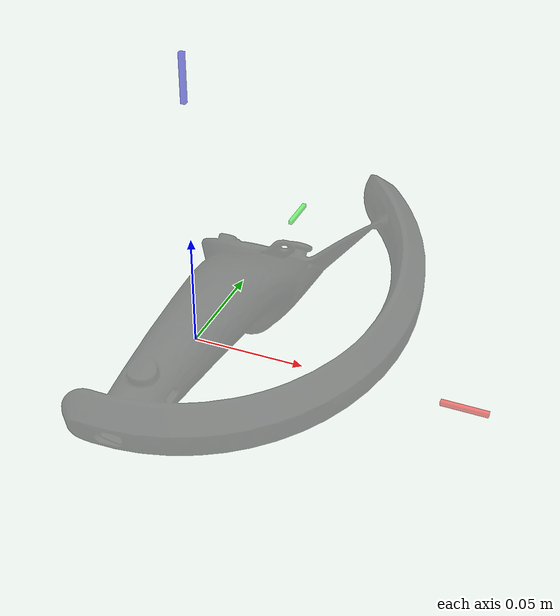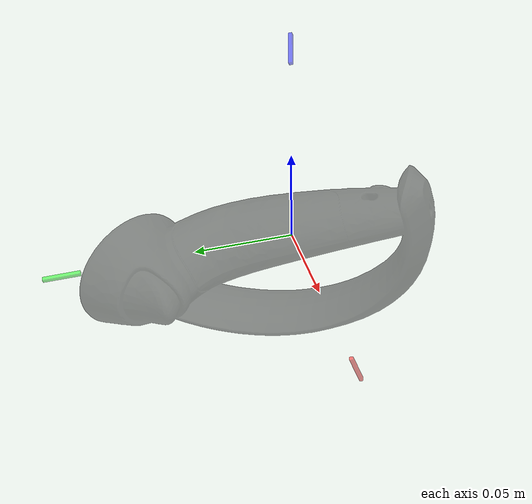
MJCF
<?xml version="1.0" encoding="utf-8"?>
<mujoco model="controller_right">
  <compiler angle="radian" meshdir="assets" texturedir="assets" autolimits="true"/>
  <asset>
    <mesh file="controller.obj"/>
  </asset>
  <default>
    <material specular="0.5" shininess="0.25"/>
    <default class="controller_visual">
      <geom type="mesh" contype="0" conaffinity="0" group="2"/>
    </default>
  </default>
  <worldbody>
    <body name="controller_valve_left">
      <geom type="box" size="0.01 0.001 0.001" rgba="1 0 0 0.5" pos="0.12 0 0" class="controller_visual"/>
      <geom type="box" size="0.001 0.01 0.001" rgba="0 1 0 0.5" pos="0 0.12 0" class="controller_visual"/>
      <geom type="box" size="0.001 0.001 0.01" rgba="0 0 1 0.5" pos="0 0 0.12" class="controller_visual"/>
      <body pos="0 0.13 -0.015" euler="1.3021552 0.0052883 0.0361458">
        <geom type="mesh" mesh="controller" class="controller_visual" rgba="0.1 0.1 0.1 0.5"/>
      </body>
    </body>
  </worldbody>
</mujoco>
